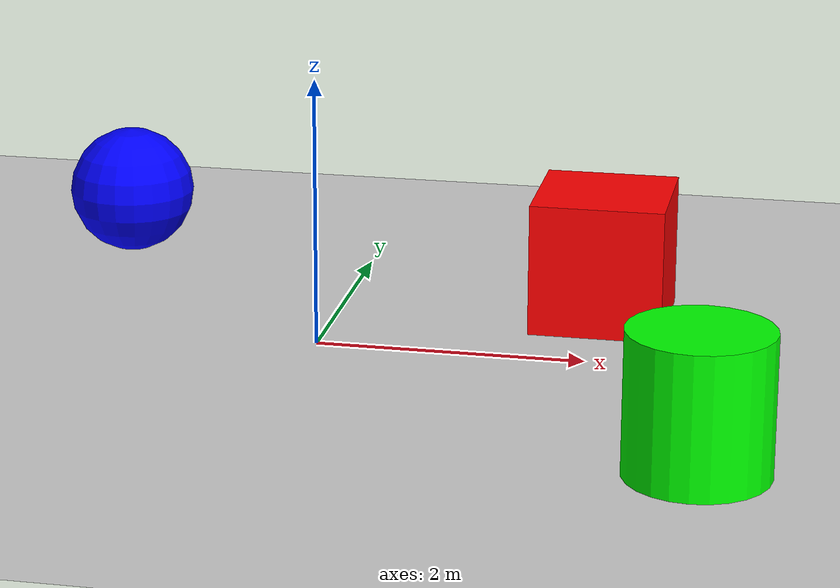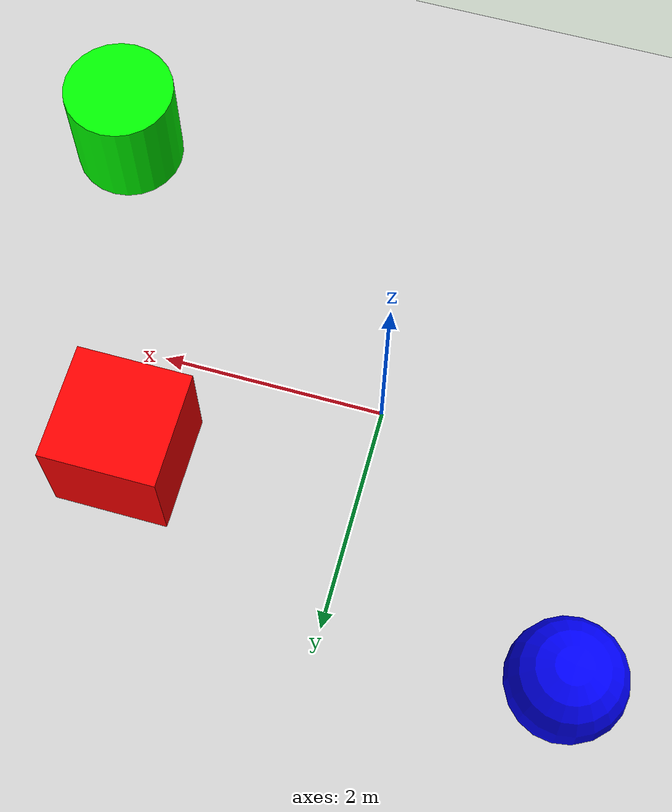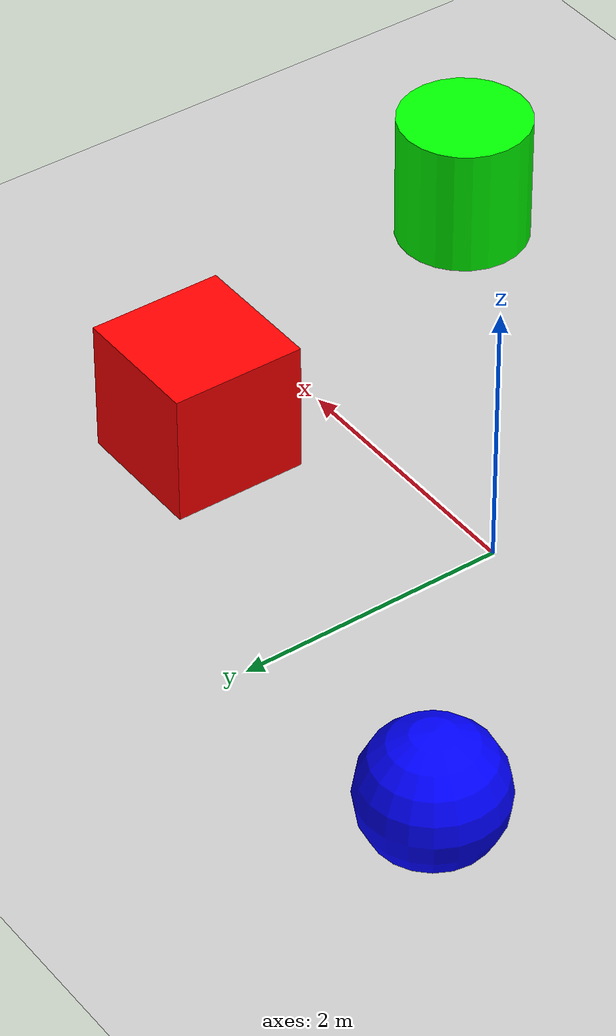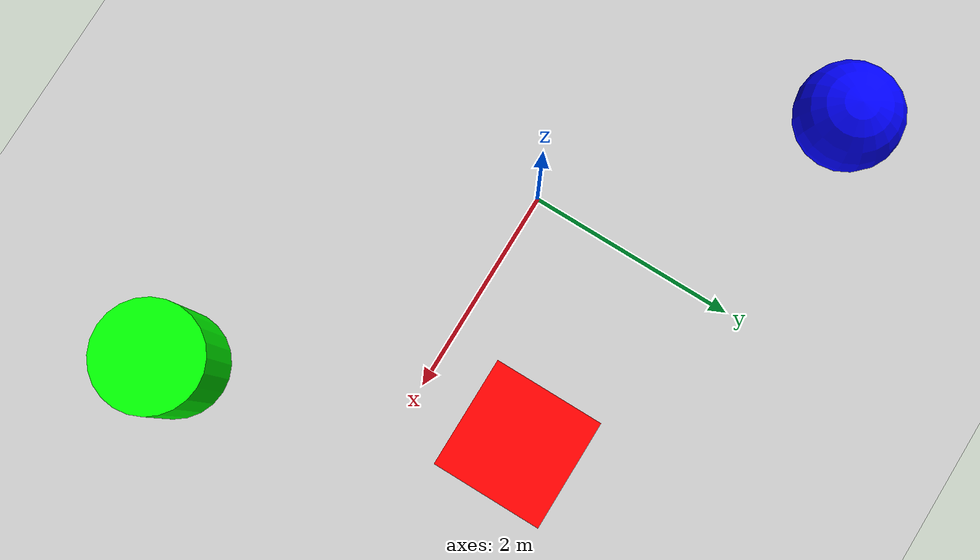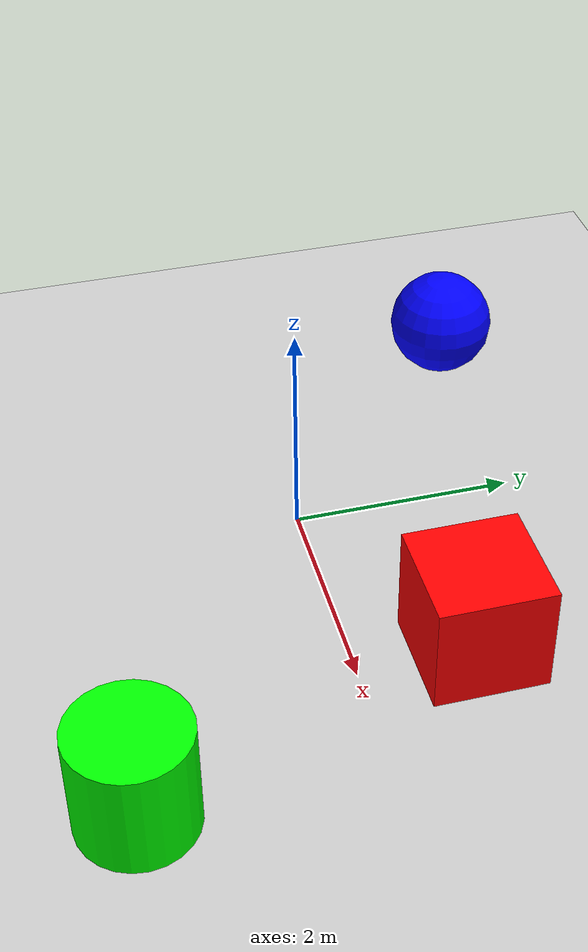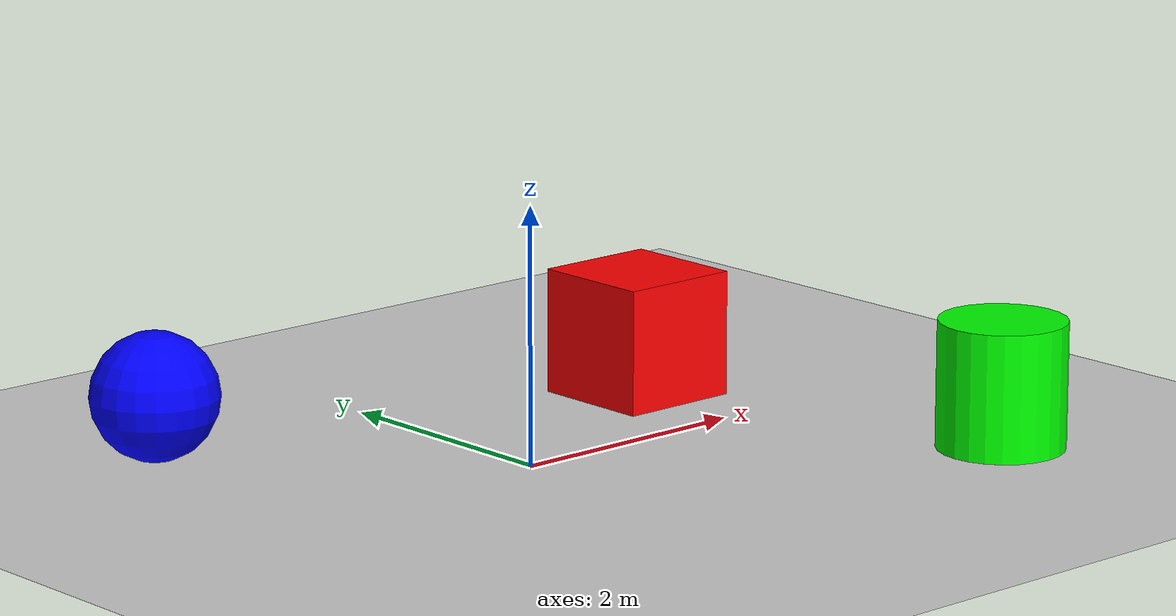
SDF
<?xml version="1.0" ?>
<sdf version="1.8">
    <world name="empty">
        <physics name="1ms" type="ignored">
            <max_step_size>0.001</max_step_size>
            <real_time_factor>1.0</real_time_factor>
        </physics>
        <plugin filename="gz-sim-physics-system" name="gz::sim::systems::Physics"></plugin>
        <plugin filename="gz-sim-user-commands-system" name="gz::sim::systems::UserCommands"></plugin>
        <plugin filename="gz-sim-scene-broadcaster-system" name="gz::sim::systems::SceneBroadcaster"></plugin>

        <light type="directional" name="sun">
            <cast_shadows>true</cast_shadows>
            <pose>0 0 10 0 0 0</pose>
            <diffuse>0.8 0.8 0.8 1</diffuse>
            <specular>0.2 0.2 0.2 1</specular>
            <attenuation>
                <range>1000</range>
                <constant>0.9</constant>
                <linear>0.01</linear>
                <quadratic>0.001</quadratic>
            </attenuation>
            <direction>-0.5 0.1 -0.9</direction>
        </light>

        <model name="ground_plane">
            <static>true</static>
            <link name="link">
                <collision name="collision">
                    <geometry>
                        <plane>
                            <normal>0 0 1</normal>
                            <size>100 100</size>
                        </plane>
                    </geometry>
                </collision>
                <visual name="visual">
                    <geometry>
                        <plane>
                            <normal>0 0 1</normal>
                            <size>100 100</size>
                        </plane>
                    </geometry>
                    <material>
                        <ambient>0.8 0.8 0.8 1</ambient>
                        <diffuse>0.8 0.8 0.8 1</diffuse>
                        <specular>0.8 0.8 0.8 1</specular>
                    </material>
                </visual>
            </link>
        </model>

        <model name="red_box">
            <pose>2 1 0.5 0 0 0</pose>
            <static>true</static>
            <link name="link">
                <collision name="collision">
                    <geometry>
                        <box><size>1 1 1</size></box>
                    </geometry>
                </collision>
                <visual name="visual">
                    <geometry>
                        <box><size>1 1 1</size></box>
                    </geometry>
                    <material>
                        <ambient>1 0 0 1</ambient>
                        <diffuse>1 0 0 1</diffuse>
                    </material>
                </visual>
            </link>
        </model>

        <model name="green_cylinder">
            <pose>3 -2 0.5 0 0 0</pose>
            <static>true</static>
            <link name="link">
                <collision name="collision">
                    <geometry>
                        <cylinder><radius>0.5</radius><length>1.0</length></cylinder>
                    </geometry>
                </collision>
                <visual name="visual">
                    <geometry>
                        <cylinder><radius>0.5</radius><length>1.0</length></cylinder>
                    </geometry>
                    <material>
                        <ambient>0 1 0 1</ambient>
                        <diffuse>0 1 0 1</diffuse>
                    </material>
                </visual>
            </link>
        </model>

        <model name="blue_sphere">
            <pose>-2 2 0.5 0 0 0</pose>
            <static>true</static>
            <link name="link">
                <collision name="collision">
                    <geometry>
                        <sphere><radius>0.5</radius></sphere>
                    </geometry>
                </collision>
                <visual name="visual">
                    <geometry>
                        <sphere><radius>0.5</radius></sphere>
                    </geometry>
                    <material>
                        <ambient>0 0 1 1</ambient>
                        <diffuse>0 0 1 1</diffuse>
                    </material>
                </visual>
            </link>
        </model>
    </world>
</sdf>
